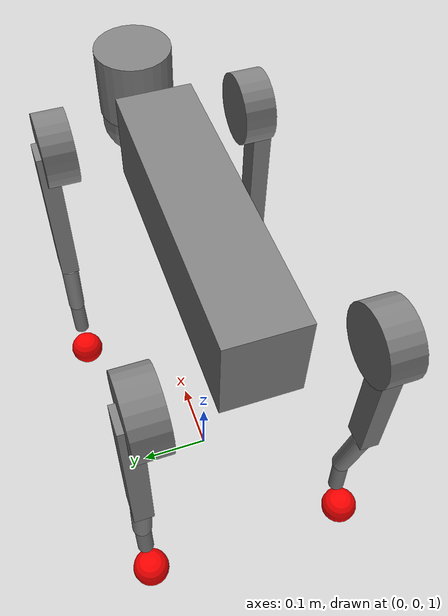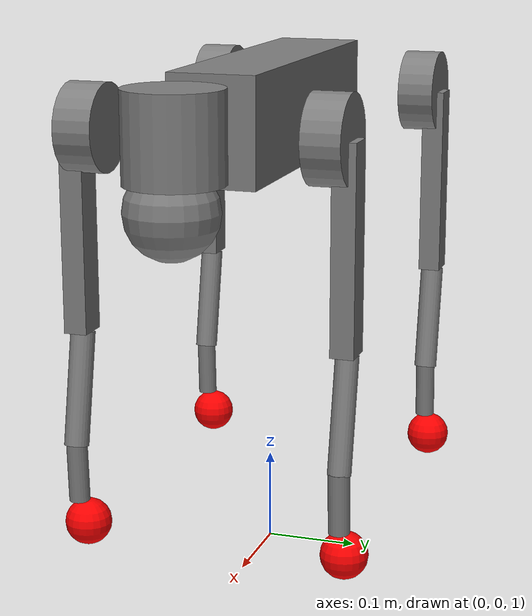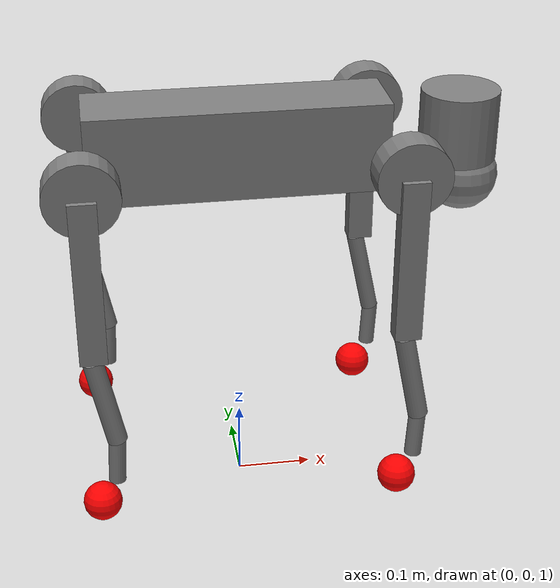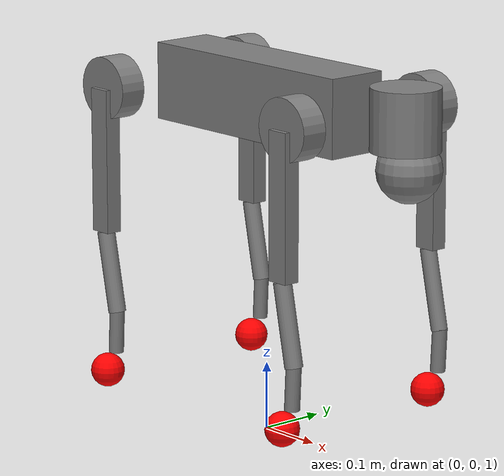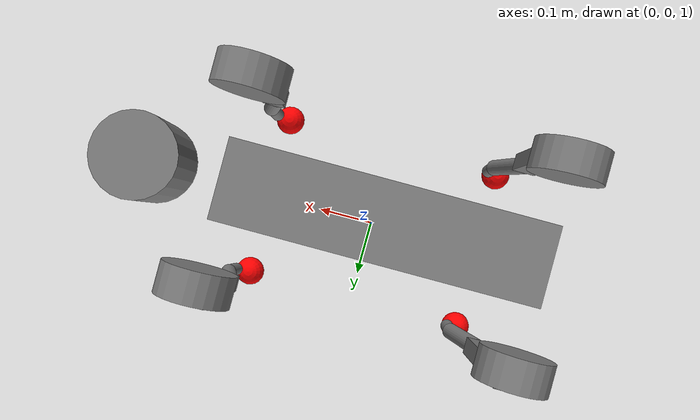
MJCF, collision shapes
<mujoco model="go2">
  <compiler angle="radian" meshdir="assets" autolimits="true" />

  <option cone="elliptic" impratio="100" />

  <default>
    <default class="go2">
      <geom friction="0.4" margin="0.001" condim="1"/>
      <joint axis="0 1 0"/>
      <default class="abduction">
        <joint axis="1 0 0" range="-1.0472 1.0472"/>
      </default>
      <default class="hip">
        <default class="front_hip">
          <joint range="-1.5708 3.4907"/>
        </default>
        <default class="back_hip">
          <joint range="-0.5236 4.5379"/>
        </default>
      </default>
      <default class="knee">
        <joint range="-2.7227 -0.83776"/>
      </default>
      <default class="visual">
        <geom type="mesh" contype="0" conaffinity="0" group="2"/>
      </default>
      <default class="collision">
        <geom group="3"/>
        <default class="foot">
          <geom size="0.022" pos="-0.002 0 -0.213" priority="1" condim="6"
            friction="0.4 0.02 0.01"/>
        </default>
      </default>
      <default class="foot_site">
        <site type="sphere" size="0.025" pos="-0.002 0 -0.213" rgba="1 0 0 1.0"/>
      </default>
    </default>
  </default>

  <asset>
    <material name="metal" rgba=".9 .95 .95 1" />
    <material name="black" rgba="0 0 0 1" />
    <material name="white" rgba="1 1 1 1" />
    <material name="gray" rgba="0.671705 0.692426 0.774270 1" />

    <mesh file="base_0.obj" />
    <mesh file="base_1.obj" />
    <mesh file="base_2.obj" />
    <mesh file="base_3.obj" />
    <mesh file="base_4.obj" />
    <mesh file="hip_0.obj" />
    <mesh file="hip_1.obj" />
    <mesh file="thigh_0.obj" />
    <mesh file="thigh_1.obj" />
    <mesh file="thigh_mirror_0.obj" />
    <mesh file="thigh_mirror_1.obj" />
    <mesh file="calf_0.obj" />
    <mesh file="calf_1.obj" />
    <mesh file="calf_mirror_0.obj" />
    <mesh file="calf_mirror_1.obj" />
    <mesh file="foot.obj" />
  </asset>

  <worldbody>
    <body name="trunk" pos="0 0 1.5" childclass="go2">
      <inertial pos="0.021112 0 -0.005366" mass="6.921"
        fullinertia="0.02448 0.098077 0.107 0.00012166 0.0014849 -3.12e-05" />
      <freejoint name="floating_base_joint"/>
      <geom mesh="base_0" material="black" class="visual" />
      <geom mesh="base_1" material="black" class="visual" />
      <geom mesh="base_2" material="black" class="visual" />
      <geom mesh="base_3" material="white" class="visual" />
      <geom mesh="base_4" material="gray" class="visual" />
      <geom name="trunk_collision" size="0.1881 0.04675 0.057" type="box" class="collision" />
      <geom name="head_collision" size="0.05 0.045" pos="0.285 0 0.01" type="cylinder" class="collision" />
      <geom name="lidar_collision" size="0.047" pos="0.293 0 -0.06" class="collision" />
      <site name="imu" pos="-0.02557 0 0.04232" />
      <body name="Head_upper" pos="0.285 0 0.01">
        <inertial pos="0 0 0" mass="0.001" fullinertia="9.6e-06 9.6e-06 9.6e-06 0 0 0" />
        <body name="Head_lower" pos="0.008 0 -0.07">
          <inertial pos="0 0 0" mass="0.001" fullinertia="9.6e-06 9.6e-06 9.6e-06 0 0 0" />
        </body>
      </body>
      <body name="FL_hip_rotor" pos="0.11215 0.04675 0">
        <inertial pos="0 0 0" mass="0.089" fullinertia="0.000111842 0.000059647 0.000059647 0 0 0" />
      </body>
      <body name="FR_hip_rotor" pos="0.11215 -0.04675 0">
        <inertial pos="0 0 0" mass="0.089" fullinertia="0.000111842 0.000059647 0.000059647 0 0 0" />
      </body>
      <body name="RL_hip_rotor" pos="-0.11215 0.04675 0">
        <inertial pos="0 0 0" mass="0.089" fullinertia="0.000111842 0.000059647 0.000059647 0 0 0" />
      </body>
      <body name="RR_hip_rotor" pos="-0.11215 -0.04675 0">
        <inertial pos="0 0 0" mass="0.089" fullinertia="0.000111842 0.000059647 0.000059647 0 0 0" />
      </body>
      <body name="FL_hip" pos="0.1934 0.0465 0">
        <inertial pos="-0.0054 0.00194 -0.000105" mass="0.678"
          fullinertia="0.00048 0.000884 0.000596 -3.01e-06 1.11e-06 -1.42e-06" />
        <joint name="FL_hip_joint" class="abduction" />
        <geom mesh="hip_0" material="metal" class="visual" />
        <geom mesh="hip_1" material="gray" class="visual" />
        <geom name="FL_hip_collision" size="0.046 0.02" pos="0 0.08 0" quat="1 1 0 0" type="cylinder" class="collision" />
        <body name="FL_thigh_rotor" pos="0 -0.00015 0">
          <inertial pos="0 0 0" mass="0.089" fullinertia="0.000059647 0.000111842 0.000059647 0 0 0" />
        </body>
        <body name="FL_thigh" pos="0 0.0955 0">
          <inertial pos="-0.00374 -0.0223 -0.0327" mass="1.152"
            fullinertia="0.00584 0.0058 0.00103 8.72e-05 -0.000289 0.000808" />
          <joint name="FL_thigh_joint" class="front_hip" />
          <geom mesh="thigh_0" material="metal" class="visual" />
          <geom mesh="thigh_1" material="gray" class="visual" />
          <geom name="FL_thigh_collision" size="0.1065 0.01225 0.017" pos="0 0 -0.1065" quat="0.707107 0 0.707107 0"
            type="box" class="collision" />
          <body name="FL_calf_rotor" pos="0 -0.03235 0">
            <inertial pos="0 0 0" mass="0.089" fullinertia="0.000059647 0.000111842 0.000059647 0 0 0" />
          </body>
          <body name="FL_calf" pos="0 0 -0.213">
            <inertial pos="0.00548 -0.000975 -0.115" mass="0.154"
              fullinertia="0.00108 0.0011 3.29e-05 3.4e-07 1.72e-05 8.28e-06" />
            <joint name="FL_calf_joint" class="knee" />
            <geom mesh="calf_0" material="gray" class="visual" />
            <geom mesh="calf_1" material="black" class="visual" />
            <geom name="FL_calf_collision1" size="0.012 0.06" pos="0.008 0 -0.06" quat="0.994493 0 -0.104807 0"
              type="cylinder" class="collision" />
            <geom name="FL_calf_collision2" size="0.011 0.0325" pos="0.02 0 -0.148" quat="0.999688 0 0.0249974 0"
              type="cylinder" class="collision" />
            <geom pos="0 0 -0.213" mesh="foot" class="visual" material="black" />
            <geom name="FL_foot_collision" class="foot" />
            <site name="FL" class="foot_site"/>
            <body name="FL_foot" pos="0 0 -0.213">
              <inertial pos="0 0 0" mass="0.04" fullinertia="9.6e-06 9.6e-06 9.6e-06 0 0 0" />
            </body>
          </body>
        </body>
      </body>
      <body name="FR_hip" pos="0.1934 -0.0465 0">
        <inertial pos="-0.0054 -0.00194 -0.000105" mass="0.678"
          fullinertia="0.00048 0.000884 0.000596 3.01e-06 1.11e-06 1.42e-06" />
        <joint name="FR_hip_joint" class="abduction" />
        <geom mesh="hip_0" material="metal" class="visual" quat="4.63268e-05 1 0 0" />
        <geom mesh="hip_1" material="gray" class="visual" quat="4.63268e-05 1 0 0" />
        <geom name="FR_hip_collision" size="0.046 0.02" pos="0 -0.08 0" quat="0.707107 0.707107 0 0" type="cylinder"
          class="collision" />
        <body name="FR_thigh_rotor" pos="0 0.00015 0">
          <inertial pos="0 0 0" mass="0.089" fullinertia="0.000059647 0.000111842 0.000059647 0 0 0" />
        </body>
        <body name="FR_thigh" pos="0 -0.0955 0">
          <inertial pos="-0.00374 0.0223 -0.0327" mass="1.152"
            fullinertia="0.00584 0.0058 0.00103 -8.72e-05 -0.000289 -0.000808" />
          <joint name="FR_thigh_joint" class="front_hip" />
          <geom mesh="thigh_mirror_0" material="metal" class="visual" />
          <geom mesh="thigh_mirror_1" material="gray" class="visual" />
          <geom name="FR_thigh_collision" size="0.1065 0.01225 0.017" pos="0 0 -0.1065" quat="0.707107 0 0.707107 0"
            type="box" class="collision" />
          <body name="FR_calf_rotor" pos="0 0.03235 0">
            <inertial pos="0 0 0" mass="0.089" fullinertia="0.000059647 0.000111842 0.000059647 0 0 0" />
          </body>
          <body name="FR_calf" pos="0 0 -0.213">
            <inertial pos="0.00548 0.000975 -0.115" mass="0.154"
              fullinertia="0.00108 0.0011 3.29e-05 -3.4e-07 1.72e-05 -8.28e-06" />
            <joint name="FR_calf_joint" class="knee" />
            <geom mesh="calf_mirror_0" material="gray" class="visual" />
            <geom mesh="calf_mirror_1" material="black" class="visual" />
            <geom name="FR_calf_collision1" size="0.013 0.06" pos="0.01 0 -0.06" quat="0.995004 0 -0.0998334 0"
              type="cylinder" class="collision" />
            <geom name="FR_calf_collision2" size="0.011 0.0325" pos="0.02 0 -0.148" quat="0.999688 0 0.0249974 0"
              type="cylinder" class="collision" />
            <geom pos="0 0 -0.213" mesh="foot" class="visual" material="black" />
            <geom name="FR_foot_collision" class="foot" />
            <site name="FR" class="foot_site"/>
            <body name="FR_foot" pos="0 0 -0.213">
              <inertial pos="0 0 0" mass="0.04" fullinertia="9.6e-06 9.6e-06 9.6e-06 0 0 0" />
            </body>
          </body>
        </body>
      </body>
      <body name="RL_hip" pos="-0.1934 0.0465 0">
        <inertial pos="0.0054 0.00194 -0.000105" mass="0.678"
          fullinertia="0.00048 0.000884 0.000596 3.01e-06 -1.11e-06 -1.42e-06" />
        <joint name="RL_hip_joint" class="abduction" />
        <geom mesh="hip_0" material="metal" class="visual" quat="4.63268e-05 0 1 0" />
        <geom mesh="hip_1" material="gray" class="visual" quat="4.63268e-05 0 1 0" />
        <geom name="RL_hip_collision" size="0.046 0.02" pos="0 0.08 0" quat="0.707107 0.707107 0 0" type="cylinder"
          class="collision" />
        <body name="RL_thigh_rotor" pos="0 -0.00015 0">
          <inertial pos="0 0 0" mass="0.089" fullinertia="0.000059647 0.000111842 0.000059647 0 0 0" />
        </body>
        <body name="RL_thigh" pos="0 0.0955 0">
          <inertial pos="-0.00374 -0.0223 -0.0327" mass="1.152"
            fullinertia="0.00584 0.0058 0.00103 8.72e-05 -0.000289 0.000808" />
          <joint name="RL_thigh_joint" class="back_hip" />
          <geom mesh="thigh_0" material="metal" class="visual" />
          <geom mesh="thigh_1" material="gray" class="visual" />
          <geom name="RL_thigh_collision" size="0.1065 0.01225 0.017" pos="0 0 -0.1065" quat="0.707107 0 0.707107 0"
            type="box" class="collision" />
          <body name="RL_calf_rotor" pos="0 -0.03235 0">
            <inertial pos="0 0 0" mass="0.089" fullinertia="0.000059647 0.000111842 0.000059647 0 0 0" />
          </body>
          <body name="RL_calf" pos="0 0 -0.213">
            <inertial pos="0.00548 -0.000975 -0.115" mass="0.154"
              fullinertia="0.00108 0.0011 3.29e-05 3.4e-07 1.72e-05 8.28e-06" />
            <joint name="RL_calf_joint" class="knee" />
            <geom mesh="calf_0" material="gray" class="visual" />
            <geom mesh="calf_1" material="black" class="visual" />
            <geom name="RL_calf_collision1" size="0.013 0.06" pos="0.01 0 -0.06" quat="0.995004 0 -0.0998334 0"
              type="cylinder" class="collision" />
            <geom name="RL_calf_collision2" size="0.011 0.0325" pos="0.02 0 -0.148" quat="0.999688 0 0.0249974 0"
              type="cylinder" class="collision" />
            <geom pos="0 0 -0.213" mesh="foot" class="visual" material="black" />
            <geom name="RL_foot_collision" class="foot" />
            <site name="RL" class="foot_site"/>
            <body name="RL_foot" pos="0 0 -0.213">
              <inertial pos="0 0 0" mass="0.04" fullinertia="9.6e-06 9.6e-06 9.6e-06 0 0 0" />
            </body>
          </body>
        </body>
      </body>
      <body name="RR_hip" pos="-0.1934 -0.0465 0">
        <inertial pos="0.0054 -0.00194 -0.000105" mass="0.678"
          fullinertia="0.00048 0.000884 0.000596 -3.01e-06 -1.11e-06 1.42e-06" />
        <joint name="RR_hip_joint" class="abduction" />
        <geom mesh="hip_0" material="metal" class="visual"
          quat="2.14617e-09 4.63268e-05 4.63268e-05 -1" />
        <geom mesh="hip_1" material="gray" class="visual"
          quat="2.14617e-09 4.63268e-05 4.63268e-05 -1" />
        <geom name="RR_hip_collision" size="0.046 0.02" pos="0 -0.08 0" quat="0.707107 0.707107 0 0" type="cylinder"
          class="collision" />
        <body name="RR_thigh_rotor" pos="0 0.00015 0">
          <inertial pos="0 0 0" mass="0.089" fullinertia="0.000059647 0.000111842 0.000059647 0 0 0" />
        </body>
        <body name="RR_thigh" pos="0 -0.0955 0">
          <inertial pos="-0.00374 0.0223 -0.0327" mass="1.152"
            fullinertia="0.00584 0.0058 0.00103 -8.72e-05 -0.000289 -0.000808" />
          <joint name="RR_thigh_joint" class="back_hip" />
          <geom mesh="thigh_mirror_0" material="metal" class="visual" />
          <geom mesh="thigh_mirror_1" material="gray" class="visual" />
          <geom name="RR_thigh_collision" size="0.1065 0.01225 0.017" pos="0 0 -0.1065" quat="0.707107 0 0.707107 0"
            type="box" class="collision" />
          <body name="RR_calf_rotor" pos="0 0.03235 0">
            <inertial pos="0 0 0" mass="0.089" fullinertia="0.000059647 0.000111842 0.000059647 0 0 0" />
          </body>
          <body name="RR_calf" pos="0 0 -0.213">
            <inertial pos="0.00548 0.000975 -0.115" mass="0.154"
              fullinertia="0.00108 0.0011 3.29e-05 -3.4e-07 1.72e-05 -8.28e-06" />
            <joint name="RR_calf_joint" class="knee" />
            <geom mesh="calf_mirror_0" material="gray" class="visual" />
            <geom mesh="calf_mirror_1" material="black" class="visual" />
            <geom name="RR_calf_collision1" size="0.013 0.06" pos="0.01 0 -0.06" quat="0.995004 0 -0.0998334 0"
              type="cylinder" class="collision" />
            <geom name="RR_calf_collision2" size="0.011 0.0325" pos="0.02 0 -0.148" quat="0.999688 0 0.0249974 0"
              type="cylinder" class="collision" />
            <geom pos="0 0 -0.213" mesh="foot" class="visual" material="black" />
            <geom name="RR_foot_collision" class="foot" />
            <site name="RR" class="foot_site"/>
            <body name="RR_foot" pos="0 0 -0.213">
              <inertial pos="0 0 0" mass="0.04" fullinertia="9.6e-06 9.6e-06 9.6e-06 0 0 0" />
            </body>
          </body>
        </body>
      </body>
    </body>
  </worldbody>

  <!-- Comment to fit mjlab setting because it will auto-generate actuator -->

  <sensor>
    <jointpos name="FR_hip_pos" joint="FR_hip_joint" />
    <jointpos name="FR_thigh_pos" joint="FR_thigh_joint" />
    <jointpos name="FR_calf_pos" joint="FR_calf_joint" />
    <jointpos name="FL_hip_pos" joint="FL_hip_joint" />
    <jointpos name="FL_thigh_pos" joint="FL_thigh_joint" />
    <jointpos name="FL_calf_pos" joint="FL_calf_joint" />
    <jointpos name="RR_hip_pos" joint="RR_hip_joint" />
    <jointpos name="RR_thigh_pos" joint="RR_thigh_joint" />
    <jointpos name="RR_calf_pos" joint="RR_calf_joint" />
    <jointpos name="RL_hip_pos" joint="RL_hip_joint" />
    <jointpos name="RL_thigh_pos" joint="RL_thigh_joint" />
    <jointpos name="RL_calf_pos" joint="RL_calf_joint" />

    <jointvel name="FR_hip_vel" joint="FR_hip_joint" />
    <jointvel name="FR_thigh_vel" joint="FR_thigh_joint" />
    <jointvel name="FR_calf_vel" joint="FR_calf_joint" />
    <jointvel name="FL_hip_vel" joint="FL_hip_joint" />
    <jointvel name="FL_thigh_vel" joint="FL_thigh_joint" />
    <jointvel name="FL_calf_vel" joint="FL_calf_joint" />
    <jointvel name="RR_hip_vel" joint="RR_hip_joint" />
    <jointvel name="RR_thigh_vel" joint="RR_thigh_joint" />
    <jointvel name="RR_calf_vel" joint="RR_calf_joint" />
    <jointvel name="RL_hip_vel" joint="RL_hip_joint" />
    <jointvel name="RL_thigh_vel" joint="RL_thigh_joint" />
    <jointvel name="RL_calf_vel" joint="RL_calf_joint" />

    <jointactuatorfrc name="FR_hip_torque" joint="FR_hip_joint" noise="0.01" />
    <jointactuatorfrc name="FR_thigh_torque" joint="FR_thigh_joint" noise="0.01" />
    <jointactuatorfrc name="FR_calf_torque" joint="FR_calf_joint" noise="0.01" />
    <jointactuatorfrc name="FL_hip_torque" joint="FL_hip_joint" noise="0.01" />
    <jointactuatorfrc name="FL_thigh_torque" joint="FL_thigh_joint" noise="0.01" />
    <jointactuatorfrc name="FL_calf_torque" joint="FL_calf_joint" noise="0.01" />
    <jointactuatorfrc name="RR_hip_torque" joint="RR_hip_joint" noise="0.01" />
    <jointactuatorfrc name="RR_thigh_torque" joint="RR_thigh_joint" noise="0.01" />
    <jointactuatorfrc name="RR_calf_torque" joint="RR_calf_joint" noise="0.01" />
    <jointactuatorfrc name="RL_hip_torque" joint="RL_hip_joint" noise="0.01" />
    <jointactuatorfrc name="RL_thigh_torque" joint="RL_thigh_joint" noise="0.01" />
    <jointactuatorfrc name="RL_calf_torque" joint="RL_calf_joint" noise="0.01" />

    <framequat name="imu_quat" objtype="site" objname="imu" />
    <gyro name="imu_ang_vel" site="imu" />
    <velocimeter name="imu_lin_vel" site="imu"/>
    <accelerometer name="imu_lin_acc" site="imu" />
    <subtreeangmom name="root_angmom" body="trunk"/>

    <!-- ground truth -->
    <framepos name="frame_pos" objtype="site" objname="imu" />
    <framelinvel name="frame_vel" objtype="site" objname="imu" />

    <touch name="FR_touch" site="FR"/>
    <touch name="FL_touch" site="FL"/>
    <touch name="RR_touch" site="RR"/>
    <touch name="RL_touch" site="RL"/>

    <framequat name="FR_foot_quat" objname="FR" objtype="site"/>
    <framequat name="FL_foot_quat" objname="FL" objtype="site"/>
    <framequat name="RR_foot_quat" objname="RR" objtype="site"/>
    <framequat name="RL_foot_quat" objname="RL" objtype="site"/>

    <framepos name="FR_pos" objtype="site" objname="FR" />
    <framepos name="FL_pos" objtype="site" objname="FL" />
    <framepos name="RR_pos" objtype="site" objname="RR" />
    <framepos name="RL_pos" objtype="site" objname="RL" />

    <framelinvel name="FR_linvel" objtype="site" objname="FR" />
    <framelinvel name="FL_linvel" objtype="site" objname="FL" />
    <framelinvel name="RR_linvel" objtype="site" objname="RR" />
    <framelinvel name="RL_linvel" objtype="site" objname="RL" />

    <contact name="FR_contact" geom1="FR_foot_collision" data="force" reduce="netforce"/>
    <contact name="FL_contact" geom1="FL_foot_collision" data="force" reduce="netforce"/>
    <contact name="RR_contact" geom1="RR_foot_collision" data="force" reduce="netforce"/>
    <contact name="RL_contact" geom1="RL_foot_collision" data="force" reduce="netforce"/>
  </sensor>

</mujoco>
